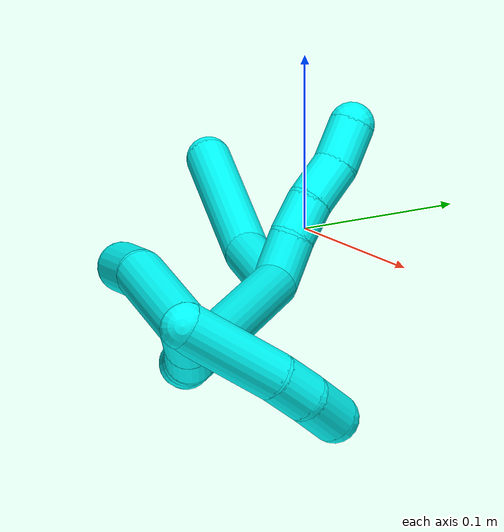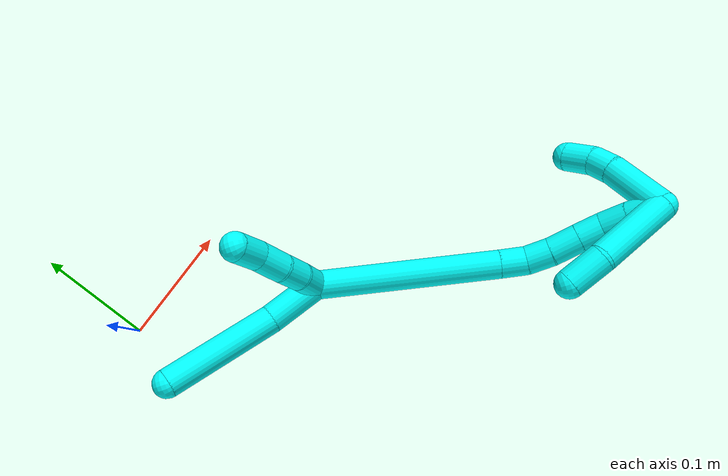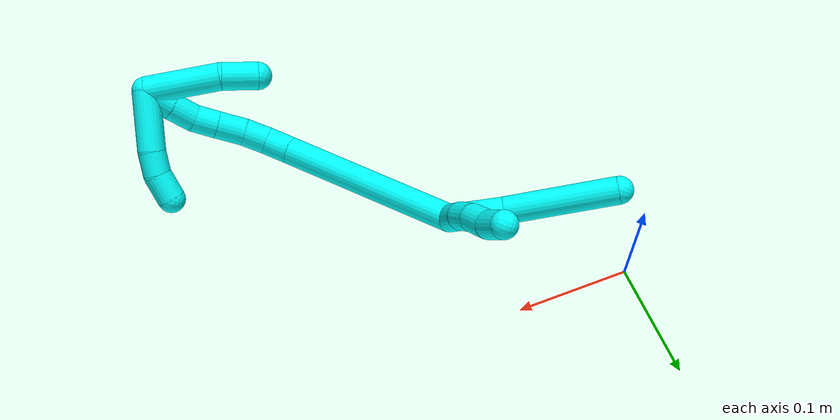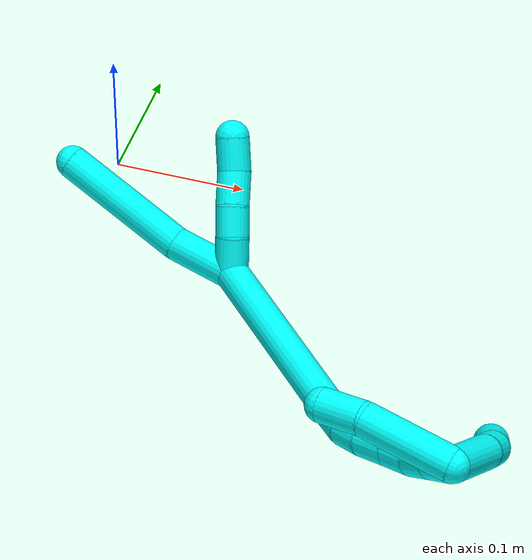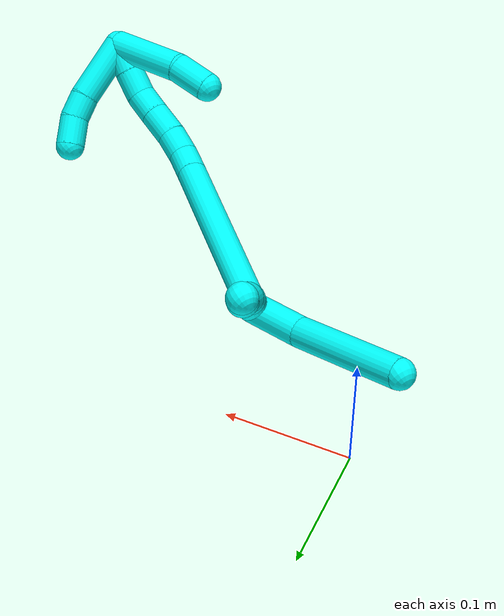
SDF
<sdf version="1.7">
 <world name="default">
  <model name="3">
   <static>0</static>
   <link name="3">
    <collision name="collision-cylinder-e_1_2_8">
     <pose>-0.010464 -0.004546 -0.021391 2.93221 -0.446299 -2.27431</pose>
     <geometry><cylinder><radius>0.0125</radius><length>0.048487</length></cylinder></geometry>
     <surface>
      <friction><ode><mu>1.16</mu><mu2>1.16</mu2><slip1>0</slip1><slip2>0</slip2></ode></friction>
      <contact><ode><kp>1e+06</kp><kd>1</kd><max_vel>0</max_vel><min_depth>0.001</min_depth></ode></contact>
     </surface>
    </collision>
    <visual name="visual-cylinder-e_1_2_8">
     <pose>-0.010464 -0.004546 -0.021391 2.93221 -0.446299 -2.27431</pose>
     <geometry><cylinder><radius>0.0125</radius><length>0.048487</length></cylinder></geometry>
     <material><ambient>0.003922 1 0.996078 1</ambient></material>
    </visual>
    <collision name="collision-cylinder-e_2_8_6">
     <pose>-0.049658 -0.011422 -0.084561 3.08586 -0.601669 -2.9624</pose>
     <geometry><cylinder><radius>0.0125</radius><length>0.101513</length></cylinder></geometry>
     <surface>
      <friction><ode><mu>1.16</mu><mu2>1.16</mu2><slip1>0</slip1><slip2>0</slip2></ode></friction>
      <contact><ode><kp>1e+06</kp><kd>1</kd><max_vel>0</max_vel><min_depth>0.001</min_depth></ode></contact>
     </surface>
    </collision>
    <visual name="visual-cylinder-e_2_8_6">
     <pose>-0.049658 -0.011422 -0.084561 3.08586 -0.601669 -2.9624</pose>
     <geometry><cylinder><radius>0.0125</radius><length>0.101513</length></cylinder></geometry>
     <material><ambient>0.003922 1 0.996078 1</ambient></material>
    </visual>
    <collision name="collision-cylinder-e_1_2_9">
     <pose>-0.009775 0.008976 -0.002224 -1.81365 -0.813149 1.00607</pose>
     <geometry><cylinder><radius>0.0125</radius><length>0.026912</length></cylinder></geometry>
     <surface>
      <friction><ode><mu>1.16</mu><mu2>1.16</mu2><slip1>0</slip1><slip2>0</slip2></ode></friction>
      <contact><ode><kp>1e+06</kp><kd>1</kd><max_vel>0</max_vel><min_depth>0.001</min_depth></ode></contact>
     </surface>
    </collision>
    <visual name="visual-cylinder-e_1_2_9">
     <pose>-0.009775 0.008976 -0.002224 -1.81365 -0.813149 1.00607</pose>
     <geometry><cylinder><radius>0.0125</radius><length>0.026912</length></cylinder></geometry>
     <material><ambient>0.003922 1 0.996078 1</ambient></material>
    </visual>
    <collision name="collision-cylinder-e_2_9_10">
     <pose>-0.026588 0.025735 -0.007956 -1.99435 -0.689382 1.01439</pose>
     <geometry><cylinder><radius>0.0125</radius><length>0.022128</length></cylinder></geometry>
     <surface>
      <friction><ode><mu>1.16</mu><mu2>1.16</mu2><slip1>0</slip1><slip2>0</slip2></ode></friction>
      <contact><ode><kp>1e+06</kp><kd>1</kd><max_vel>0</max_vel><min_depth>0.001</min_depth></ode></contact>
     </surface>
    </collision>
    <visual name="visual-cylinder-e_2_9_10">
     <pose>-0.026588 0.025735 -0.007956 -1.99435 -0.689382 1.01439</pose>
     <geometry><cylinder><radius>0.0125</radius><length>0.022128</length></cylinder></geometry>
     <material><ambient>0.003922 1 0.996078 1</ambient></material>
    </visual>
    <collision name="collision-cylinder-e_3_10_11">
     <pose>-0.040053 0.043359 -0.016704 -2.05998 -0.522979 0.838439</pose>
     <geometry><cylinder><radius>0.0125</radius><length>0.025738</length></cylinder></geometry>
     <surface>
      <friction><ode><mu>1.16</mu><mu2>1.16</mu2><slip1>0</slip1><slip2>0</slip2></ode></friction>
      <contact><ode><kp>1e+06</kp><kd>1</kd><max_vel>0</max_vel><min_depth>0.001</min_depth></ode></contact>
     </surface>
    </collision>
    <visual name="visual-cylinder-e_3_10_11">
     <pose>-0.040053 0.043359 -0.016704 -2.05998 -0.522979 0.838439</pose>
     <geometry><cylinder><radius>0.0125</radius><length>0.025738</length></cylinder></geometry>
     <material><ambient>0.003922 1 0.996078 1</ambient></material>
    </visual>
    <collision name="collision-cylinder-e_4_11_5">
     <pose>-0.055184 0.061429 -0.025888 -2.01788 -0.761722 1.133</pose>
     <geometry><cylinder><radius>0.0125</radius><length>0.025222</length></cylinder></geometry>
     <surface>
      <friction><ode><mu>1.16</mu><mu2>1.16</mu2><slip1>0</slip1><slip2>0</slip2></ode></friction>
      <contact><ode><kp>1e+06</kp><kd>1</kd><max_vel>0</max_vel><min_depth>0.001</min_depth></ode></contact>
     </surface>
    </collision>
    <visual name="visual-cylinder-e_4_11_5">
     <pose>-0.055184 0.061429 -0.025888 -2.01788 -0.761722 1.133</pose>
     <geometry><cylinder><radius>0.0125</radius><length>0.025222</length></cylinder></geometry>
     <material><ambient>0.003922 1 0.996078 1</ambient></material>
    </visual>
    <collision name="collision-cylinder-e_1_2_12">
     <pose>0.008962 -0.020865 0.076062 0.267734 0.113142 0.015253</pose>
     <geometry><cylinder><radius>0.0125</radius><length>0.158759</length></cylinder></geometry>
     <surface>
      <friction><ode><mu>1.16</mu><mu2>1.16</mu2><slip1>0</slip1><slip2>0</slip2></ode></friction>
      <contact><ode><kp>1e+06</kp><kd>1</kd><max_vel>0</max_vel><min_depth>0.001</min_depth></ode></contact>
     </surface>
    </collision>
    <visual name="visual-cylinder-e_1_2_12">
     <pose>0.008962 -0.020865 0.076062 0.267734 0.113142 0.015253</pose>
     <geometry><cylinder><radius>0.0125</radius><length>0.158759</length></cylinder></geometry>
     <material><ambient>0.003922 1 0.996078 1</ambient></material>
    </visual>
    <collision name="collision-cylinder-e_2_12_13">
     <pose>0.019054 -0.044492 0.163355 0.241056 0.097446 0.011811</pose>
     <geometry><cylinder><radius>0.0125</radius><length>0.023241</length></cylinder></geometry>
     <surface>
      <friction><ode><mu>1.16</mu><mu2>1.16</mu2><slip1>0</slip1><slip2>0</slip2></ode></friction>
      <contact><ode><kp>1e+06</kp><kd>1</kd><max_vel>0</max_vel><min_depth>0.001</min_depth></ode></contact>
     </surface>
    </collision>
    <visual name="visual-cylinder-e_2_12_13">
     <pose>0.019054 -0.044492 0.163355 0.241056 0.097446 0.011811</pose>
     <geometry><cylinder><radius>0.0125</radius><length>0.023241</length></cylinder></geometry>
     <material><ambient>0.003922 1 0.996078 1</ambient></material>
    </visual>
    <collision name="collision-cylinder-e_3_13_14">
     <pose>0.019509 -0.046825 0.185638 -0.038663 -0.061043 0.001181</pose>
     <geometry><cylinder><radius>0.0125</radius><length>0.022163</length></cylinder></geometry>
     <surface>
      <friction><ode><mu>1.16</mu><mu2>1.16</mu2><slip1>0</slip1><slip2>0</slip2></ode></friction>
      <contact><ode><kp>1e+06</kp><kd>1</kd><max_vel>0</max_vel><min_depth>0.001</min_depth></ode></contact>
     </surface>
    </collision>
    <visual name="visual-cylinder-e_3_13_14">
     <pose>0.019509 -0.046825 0.185638 -0.038663 -0.061043 0.001181</pose>
     <geometry><cylinder><radius>0.0125</radius><length>0.022163</length></cylinder></geometry>
     <material><ambient>0.003922 1 0.996078 1</ambient></material>
    </visual>
    <collision name="collision-cylinder-e_4_14_15">
     <pose>0.018574 -0.044477 0.209125 -0.153206 -0.020548 0.001577</pose>
     <geometry><cylinder><radius>0.0125</radius><length>0.025169</length></cylinder></geometry>
     <surface>
      <friction><ode><mu>1.16</mu><mu2>1.16</mu2><slip1>0</slip1><slip2>0</slip2></ode></friction>
      <contact><ode><kp>1e+06</kp><kd>1</kd><max_vel>0</max_vel><min_depth>0.001</min_depth></ode></contact>
     </surface>
    </collision>
    <visual name="visual-cylinder-e_4_14_15">
     <pose>0.018574 -0.044477 0.209125 -0.153206 -0.020548 0.001577</pose>
     <geometry><cylinder><radius>0.0125</radius><length>0.025169</length></cylinder></geometry>
     <material><ambient>0.003922 1 0.996078 1</ambient></material>
    </visual>
    <collision name="collision-cylinder-e_5_15_16">
     <pose>0.018045 -0.041108 0.232226 -0.135018 -0.025196 0.001704</pose>
     <geometry><cylinder><radius>0.0125</radius><length>0.021535</length></cylinder></geometry>
     <surface>
      <friction><ode><mu>1.16</mu><mu2>1.16</mu2><slip1>0</slip1><slip2>0</slip2></ode></friction>
      <contact><ode><kp>1e+06</kp><kd>1</kd><max_vel>0</max_vel><min_depth>0.001</min_depth></ode></contact>
     </surface>
    </collision>
    <visual name="visual-cylinder-e_5_15_16">
     <pose>0.018045 -0.041108 0.232226 -0.135018 -0.025196 0.001704</pose>
     <geometry><cylinder><radius>0.0125</radius><length>0.021535</length></cylinder></geometry>
     <material><ambient>0.003922 1 0.996078 1</ambient></material>
    </visual>
    <collision name="collision-cylinder-e_6_16_17">
     <pose>0.014293 -0.037809 0.253771 -0.168514 -0.305546 0.026007</pose>
     <geometry><cylinder><radius>0.0125</radius><length>0.023142</length></cylinder></geometry>
     <surface>
      <friction><ode><mu>1.16</mu><mu2>1.16</mu2><slip1>0</slip1><slip2>0</slip2></ode></friction>
      <contact><ode><kp>1e+06</kp><kd>1</kd><max_vel>0</max_vel><min_depth>0.001</min_depth></ode></contact>
     </surface>
    </collision>
    <visual name="visual-cylinder-e_6_16_17">
     <pose>0.014293 -0.037809 0.253771 -0.168514 -0.305546 0.026007</pose>
     <geometry><cylinder><radius>0.0125</radius><length>0.023142</length></cylinder></geometry>
     <material><ambient>0.003922 1 0.996078 1</ambient></material>
    </visual>
    <collision name="collision-cylinder-e_7_17_1">
     <pose>0.006194 -0.034511 0.276711 -0.119352 -0.363265 0.021945</pose>
     <geometry><cylinder><radius>0.0125</radius><length>0.025991</length></cylinder></geometry>
     <surface>
      <friction><ode><mu>1.16</mu><mu2>1.16</mu2><slip1>0</slip1><slip2>0</slip2></ode></friction>
      <contact><ode><kp>1e+06</kp><kd>1</kd><max_vel>0</max_vel><min_depth>0.001</min_depth></ode></contact>
     </surface>
    </collision>
    <visual name="visual-cylinder-e_7_17_1">
     <pose>0.006194 -0.034511 0.276711 -0.119352 -0.363265 0.021945</pose>
     <geometry><cylinder><radius>0.0125</radius><length>0.025991</length></cylinder></geometry>
     <material><ambient>0.003922 1 0.996078 1</ambient></material>
    </visual>
    <collision name="collision-cylinder-e_1_1_18">
     <pose>0.021205 -0.017983 0.277632 -2.20695 0.808279 -1.40616</pose>
     <geometry><cylinder><radius>0.0125</radius><length>0.054289</length></cylinder></geometry>
     <surface>
      <friction><ode><mu>1.16</mu><mu2>1.16</mu2><slip1>0</slip1><slip2>0</slip2></ode></friction>
      <contact><ode><kp>1e+06</kp><kd>1</kd><max_vel>0</max_vel><min_depth>0.001</min_depth></ode></contact>
     </surface>
    </collision>
    <visual name="visual-cylinder-e_1_1_18">
     <pose>0.021205 -0.017983 0.277632 -2.20695 0.808279 -1.40616</pose>
     <geometry><cylinder><radius>0.0125</radius><length>0.054289</length></cylinder></geometry>
     <material><ambient>0.003922 1 0.996078 1</ambient></material>
    </visual>
    <collision name="collision-cylinder-e_2_18_19">
     <pose>0.048367 0.001824 0.260999 -2.4314 0.804914 -1.70837</pose>
     <geometry><cylinder><radius>0.0125</radius><length>0.020907</length></cylinder></geometry>
     <surface>
      <friction><ode><mu>1.16</mu><mu2>1.16</mu2><slip1>0</slip1><slip2>0</slip2></ode></friction>
      <contact><ode><kp>1e+06</kp><kd>1</kd><max_vel>0</max_vel><min_depth>0.001</min_depth></ode></contact>
     </surface>
    </collision>
    <visual name="visual-cylinder-e_2_18_19">
     <pose>0.048367 0.001824 0.260999 -2.4314 0.804914 -1.70837</pose>
     <geometry><cylinder><radius>0.0125</radius><length>0.020907</length></cylinder></geometry>
     <material><ambient>0.003922 1 0.996078 1</ambient></material>
    </visual>
    <collision name="collision-cylinder-e_3_19_4">
     <pose>0.063202 0.010414 0.246254 -2.74567 0.629395 -2.03708</pose>
     <geometry><cylinder><radius>0.0125</radius><length>0.024804</length></cylinder></geometry>
     <surface>
      <friction><ode><mu>1.16</mu><mu2>1.16</mu2><slip1>0</slip1><slip2>0</slip2></ode></friction>
      <contact><ode><kp>1e+06</kp><kd>1</kd><max_vel>0</max_vel><min_depth>0.001</min_depth></ode></contact>
     </surface>
    </collision>
    <visual name="visual-cylinder-e_3_19_4">
     <pose>0.063202 0.010414 0.246254 -2.74567 0.629395 -2.03708</pose>
     <geometry><cylinder><radius>0.0125</radius><length>0.024804</length></cylinder></geometry>
     <material><ambient>0.003922 1 0.996078 1</ambient></material>
    </visual>
    <collision name="collision-cylinder-e_1_1_20">
     <pose>-0.014002 -0.040127 0.259577 2.90427 -0.47846 -2.23227</pose>
     <geometry><cylinder><radius>0.0125</radius><length>0.067672</length></cylinder></geometry>
     <surface>
      <friction><ode><mu>1.16</mu><mu2>1.16</mu2><slip1>0</slip1><slip2>0</slip2></ode></friction>
      <contact><ode><kp>1e+06</kp><kd>1</kd><max_vel>0</max_vel><min_depth>0.001</min_depth></ode></contact>
     </surface>
    </collision>
    <visual name="visual-cylinder-e_1_1_20">
     <pose>-0.014002 -0.040127 0.259577 2.90427 -0.47846 -2.23227</pose>
     <geometry><cylinder><radius>0.0125</radius><length>0.067672</length></cylinder></geometry>
     <material><ambient>0.003922 1 0.996078 1</ambient></material>
    </visual>
    <collision name="collision-cylinder-e_2_20_3">
     <pose>-0.033202 -0.051848 0.215335 2.84133 -0.225972 -1.28714</pose>
     <geometry><cylinder><radius>0.0125</radius><length>0.032328</length></cylinder></geometry>
     <surface>
      <friction><ode><mu>1.16</mu><mu2>1.16</mu2><slip1>0</slip1><slip2>0</slip2></ode></friction>
      <contact><ode><kp>1e+06</kp><kd>1</kd><max_vel>0</max_vel><min_depth>0.001</min_depth></ode></contact>
     </surface>
    </collision>
    <visual name="visual-cylinder-e_2_20_3">
     <pose>-0.033202 -0.051848 0.215335 2.84133 -0.225972 -1.28714</pose>
     <geometry><cylinder><radius>0.0125</radius><length>0.032328</length></cylinder></geometry>
     <material><ambient>0.003922 1 0.996078 1</ambient></material>
    </visual>
    <collision name="collision-sphere-3">
     <pose>-0.036824 -0.056507 0.200286 0 -0 0</pose>
     <geometry><sphere><radius>0.0125</radius></sphere></geometry>
     <surface>
      <friction><ode><mu>1.16</mu><mu2>1.16</mu2><slip1>0</slip1><slip2>0</slip2></ode></friction>
      <contact><ode><kp>1e+06</kp><kd>1</kd><max_vel>0</max_vel><min_depth>0.001</min_depth></ode></contact>
     </surface>
    </collision>
    <visual name="visual-sphere-3">
     <pose>-0.036824 -0.056507 0.200286 0 -0 0</pose>
     <geometry><sphere><radius>0.0125</radius></sphere></geometry>
     <material><ambient>0.003922 1 0.996078 1</ambient></material>
    </visual>
    <collision name="collision-sphere-20">
     <pose>-0.029581 -0.047188 0.230383 0 -0 0</pose>
     <geometry><sphere><radius>0.0125</radius></sphere></geometry>
     <surface>
      <friction><ode><mu>1.16</mu><mu2>1.16</mu2><slip1>0</slip1><slip2>0</slip2></ode></friction>
      <contact><ode><kp>1e+06</kp><kd>1</kd><max_vel>0</max_vel><min_depth>0.001</min_depth></ode></contact>
     </surface>
    </collision>
    <visual name="visual-sphere-20">
     <pose>-0.029581 -0.047188 0.230383 0 -0 0</pose>
     <geometry><sphere><radius>0.0125</radius></sphere></geometry>
     <material><ambient>0.003922 1 0.996078 1</ambient></material>
    </visual>
    <collision name="collision-sphere-4">
     <pose>0.070503 0.014281 0.237004 0 -0 0</pose>
     <geometry><sphere><radius>0.0125</radius></sphere></geometry>
     <surface>
      <friction><ode><mu>1.16</mu><mu2>1.16</mu2><slip1>0</slip1><slip2>0</slip2></ode></friction>
      <contact><ode><kp>1e+06</kp><kd>1</kd><max_vel>0</max_vel><min_depth>0.001</min_depth></ode></contact>
     </surface>
    </collision>
    <visual name="visual-sphere-4">
     <pose>0.070503 0.014281 0.237004 0 -0 0</pose>
     <geometry><sphere><radius>0.0125</radius></sphere></geometry>
     <material><ambient>0.003922 1 0.996078 1</ambient></material>
    </visual>
    <collision name="collision-sphere-11">
     <pose>-0.04648 0.0532 -0.021943 0 -0 0</pose>
     <geometry><sphere><radius>0.0125</radius></sphere></geometry>
     <surface>
      <friction><ode><mu>1.16</mu><mu2>1.16</mu2><slip1>0</slip1><slip2>0</slip2></ode></friction>
      <contact><ode><kp>1e+06</kp><kd>1</kd><max_vel>0</max_vel><min_depth>0.001</min_depth></ode></contact>
     </surface>
    </collision>
    <visual name="visual-sphere-11">
     <pose>-0.04648 0.0532 -0.021943 0 -0 0</pose>
     <geometry><sphere><radius>0.0125</radius></sphere></geometry>
     <material><ambient>0.003922 1 0.996078 1</ambient></material>
    </visual>
    <collision name="collision-sphere-10">
     <pose>-0.033625 0.033518 -0.011465 0 -0 0</pose>
     <geometry><sphere><radius>0.0125</radius></sphere></geometry>
     <surface>
      <friction><ode><mu>1.16</mu><mu2>1.16</mu2><slip1>0</slip1><slip2>0</slip2></ode></friction>
      <contact><ode><kp>1e+06</kp><kd>1</kd><max_vel>0</max_vel><min_depth>0.001</min_depth></ode></contact>
     </surface>
    </collision>
    <visual name="visual-sphere-10">
     <pose>-0.033625 0.033518 -0.011465 0 -0 0</pose>
     <geometry><sphere><radius>0.0125</radius></sphere></geometry>
     <material><ambient>0.003922 1 0.996078 1</ambient></material>
    </visual>
    <collision name="collision-sphere-6">
     <pose>-0.078387 -0.013753 -0.126339 0 -0 0</pose>
     <geometry><sphere><radius>0.0125</radius></sphere></geometry>
     <surface>
      <friction><ode><mu>1.16</mu><mu2>1.16</mu2><slip1>0</slip1><slip2>0</slip2></ode></friction>
      <contact><ode><kp>1e+06</kp><kd>1</kd><max_vel>0</max_vel><min_depth>0.001</min_depth></ode></contact>
     </surface>
    </collision>
    <visual name="visual-sphere-6">
     <pose>-0.078387 -0.013753 -0.126339 0 -0 0</pose>
     <geometry><sphere><radius>0.0125</radius></sphere></geometry>
     <material><ambient>0.003922 1 0.996078 1</ambient></material>
    </visual>
    <collision name="collision-sphere-9">
     <pose>-0.019551 0.017952 -0.004447 0 -0 0</pose>
     <geometry><sphere><radius>0.0125</radius></sphere></geometry>
     <surface>
      <friction><ode><mu>1.16</mu><mu2>1.16</mu2><slip1>0</slip1><slip2>0</slip2></ode></friction>
      <contact><ode><kp>1e+06</kp><kd>1</kd><max_vel>0</max_vel><min_depth>0.001</min_depth></ode></contact>
     </surface>
    </collision>
    <visual name="visual-sphere-9">
     <pose>-0.019551 0.017952 -0.004447 0 -0 0</pose>
     <geometry><sphere><radius>0.0125</radius></sphere></geometry>
     <material><ambient>0.003922 1 0.996078 1</ambient></material>
    </visual>
    <collision name="collision-sphere-2">
     <geometry><sphere><radius>0.0125</radius></sphere></geometry>
     <surface>
      <friction><ode><mu>1.16</mu><mu2>1.16</mu2><slip1>0</slip1><slip2>0</slip2></ode></friction>
      <contact><ode><kp>1e+06</kp><kd>1</kd><max_vel>0</max_vel><min_depth>0.001</min_depth></ode></contact>
     </surface>
    </collision>
    <visual name="visual-sphere-2">
     <geometry><sphere><radius>0.0125</radius></sphere></geometry>
     <material><ambient>0.003922 1 0.996078 1</ambient></material>
    </visual>
    <collision name="collision-sphere-19">
     <pose>0.055902 0.006548 0.255505 0 -0 0</pose>
     <geometry><sphere><radius>0.0125</radius></sphere></geometry>
     <surface>
      <friction><ode><mu>1.16</mu><mu2>1.16</mu2><slip1>0</slip1><slip2>0</slip2></ode></friction>
      <contact><ode><kp>1e+06</kp><kd>1</kd><max_vel>0</max_vel><min_depth>0.001</min_depth></ode></contact>
     </surface>
    </collision>
    <visual name="visual-sphere-19">
     <pose>0.055902 0.006548 0.255505 0 -0 0</pose>
     <geometry><sphere><radius>0.0125</radius></sphere></geometry>
     <material><ambient>0.003922 1 0.996078 1</ambient></material>
    </visual>
    <collision name="collision-sphere-8">
     <pose>-0.020929 -0.009091 -0.042783 0 -0 0</pose>
     <geometry><sphere><radius>0.0125</radius></sphere></geometry>
     <surface>
      <friction><ode><mu>1.16</mu><mu2>1.16</mu2><slip1>0</slip1><slip2>0</slip2></ode></friction>
      <contact><ode><kp>1e+06</kp><kd>1</kd><max_vel>0</max_vel><min_depth>0.001</min_depth></ode></contact>
     </surface>
    </collision>
    <visual name="visual-sphere-8">
     <pose>-0.020929 -0.009091 -0.042783 0 -0 0</pose>
     <geometry><sphere><radius>0.0125</radius></sphere></geometry>
     <material><ambient>0.003922 1 0.996078 1</ambient></material>
    </visual>
    <collision name="collision-sphere-5">
     <pose>-0.063888 0.069658 -0.029834 0 -0 0</pose>
     <geometry><sphere><radius>0.0125</radius></sphere></geometry>
     <surface>
      <friction><ode><mu>1.16</mu><mu2>1.16</mu2><slip1>0</slip1><slip2>0</slip2></ode></friction>
      <contact><ode><kp>1e+06</kp><kd>1</kd><max_vel>0</max_vel><min_depth>0.001</min_depth></ode></contact>
     </surface>
    </collision>
    <visual name="visual-sphere-5">
     <pose>-0.063888 0.069658 -0.029834 0 -0 0</pose>
     <geometry><sphere><radius>0.0125</radius></sphere></geometry>
     <material><ambient>0.003922 1 0.996078 1</ambient></material>
    </visual>
    <collision name="collision-sphere-12">
     <pose>0.017924 -0.041731 0.152124 0 -0 0</pose>
     <geometry><sphere><radius>0.0125</radius></sphere></geometry>
     <surface>
      <friction><ode><mu>1.16</mu><mu2>1.16</mu2><slip1>0</slip1><slip2>0</slip2></ode></friction>
      <contact><ode><kp>1e+06</kp><kd>1</kd><max_vel>0</max_vel><min_depth>0.001</min_depth></ode></contact>
     </surface>
    </collision>
    <visual name="visual-sphere-12">
     <pose>0.017924 -0.041731 0.152124 0 -0 0</pose>
     <geometry><sphere><radius>0.0125</radius></sphere></geometry>
     <material><ambient>0.003922 1 0.996078 1</ambient></material>
    </visual>
    <collision name="collision-sphere-13">
     <pose>0.020185 -0.047253 0.174585 0 -0 0</pose>
     <geometry><sphere><radius>0.0125</radius></sphere></geometry>
     <surface>
      <friction><ode><mu>1.16</mu><mu2>1.16</mu2><slip1>0</slip1><slip2>0</slip2></ode></friction>
      <contact><ode><kp>1e+06</kp><kd>1</kd><max_vel>0</max_vel><min_depth>0.001</min_depth></ode></contact>
     </surface>
    </collision>
    <visual name="visual-sphere-13">
     <pose>0.020185 -0.047253 0.174585 0 -0 0</pose>
     <geometry><sphere><radius>0.0125</radius></sphere></geometry>
     <material><ambient>0.003922 1 0.996078 1</ambient></material>
    </visual>
    <collision name="collision-sphere-14">
     <pose>0.018833 -0.046397 0.19669 0 -0 0</pose>
     <geometry><sphere><radius>0.0125</radius></sphere></geometry>
     <surface>
      <friction><ode><mu>1.16</mu><mu2>1.16</mu2><slip1>0</slip1><slip2>0</slip2></ode></friction>
      <contact><ode><kp>1e+06</kp><kd>1</kd><max_vel>0</max_vel><min_depth>0.001</min_depth></ode></contact>
     </surface>
    </collision>
    <visual name="visual-sphere-14">
     <pose>0.018833 -0.046397 0.19669 0 -0 0</pose>
     <geometry><sphere><radius>0.0125</radius></sphere></geometry>
     <material><ambient>0.003922 1 0.996078 1</ambient></material>
    </visual>
    <collision name="collision-sphere-15">
     <pose>0.018316 -0.042557 0.221559 0 -0 0</pose>
     <geometry><sphere><radius>0.0125</radius></sphere></geometry>
     <surface>
      <friction><ode><mu>1.16</mu><mu2>1.16</mu2><slip1>0</slip1><slip2>0</slip2></ode></friction>
      <contact><ode><kp>1e+06</kp><kd>1</kd><max_vel>0</max_vel><min_depth>0.001</min_depth></ode></contact>
     </surface>
    </collision>
    <visual name="visual-sphere-15">
     <pose>0.018316 -0.042557 0.221559 0 -0 0</pose>
     <geometry><sphere><radius>0.0125</radius></sphere></geometry>
     <material><ambient>0.003922 1 0.996078 1</ambient></material>
    </visual>
    <collision name="collision-sphere-16">
     <pose>0.017773 -0.039659 0.242892 0 -0 0</pose>
     <geometry><sphere><radius>0.0125</radius></sphere></geometry>
     <surface>
      <friction><ode><mu>1.16</mu><mu2>1.16</mu2><slip1>0</slip1><slip2>0</slip2></ode></friction>
      <contact><ode><kp>1e+06</kp><kd>1</kd><max_vel>0</max_vel><min_depth>0.001</min_depth></ode></contact>
     </surface>
    </collision>
    <visual name="visual-sphere-16">
     <pose>0.017773 -0.039659 0.242892 0 -0 0</pose>
     <geometry><sphere><radius>0.0125</radius></sphere></geometry>
     <material><ambient>0.003922 1 0.996078 1</ambient></material>
    </visual>
    <collision name="collision-sphere-17">
     <pose>0.010812 -0.035958 0.26465 0 -0 0</pose>
     <geometry><sphere><radius>0.0125</radius></sphere></geometry>
     <surface>
      <friction><ode><mu>1.16</mu><mu2>1.16</mu2><slip1>0</slip1><slip2>0</slip2></ode></friction>
      <contact><ode><kp>1e+06</kp><kd>1</kd><max_vel>0</max_vel><min_depth>0.001</min_depth></ode></contact>
     </surface>
    </collision>
    <visual name="visual-sphere-17">
     <pose>0.010812 -0.035958 0.26465 0 -0 0</pose>
     <geometry><sphere><radius>0.0125</radius></sphere></geometry>
     <material><ambient>0.003922 1 0.996078 1</ambient></material>
    </visual>
    <collision name="collision-sphere-1">
     <pose>0.001576 -0.033065 0.288772 0 -0 0</pose>
     <geometry><sphere><radius>0.0125</radius></sphere></geometry>
     <surface>
      <friction><ode><mu>1.16</mu><mu2>1.16</mu2><slip1>0</slip1><slip2>0</slip2></ode></friction>
      <contact><ode><kp>1e+06</kp><kd>1</kd><max_vel>0</max_vel><min_depth>0.001</min_depth></ode></contact>
     </surface>
    </collision>
    <visual name="visual-sphere-1">
     <pose>0.001576 -0.033065 0.288772 0 -0 0</pose>
     <geometry><sphere><radius>0.0125</radius></sphere></geometry>
     <material><ambient>0.003922 1 0.996078 1</ambient></material>
    </visual>
    <collision name="collision-sphere-18">
     <pose>0.040833 -0.002901 0.266493 0 -0 0</pose>
     <geometry><sphere><radius>0.0125</radius></sphere></geometry>
     <surface>
      <friction><ode><mu>1.16</mu><mu2>1.16</mu2><slip1>0</slip1><slip2>0</slip2></ode></friction>
      <contact><ode><kp>1e+06</kp><kd>1</kd><max_vel>0</max_vel><min_depth>0.001</min_depth></ode></contact>
     </surface>
    </collision>
    <visual name="visual-sphere-18">
     <pose>0.040833 -0.002901 0.266493 0 -0 0</pose>
     <geometry><sphere><radius>0.0125</radius></sphere></geometry>
     <material><ambient>0.003922 1 0.996078 1</ambient></material>
    </visual>
    <inertial>
     <pose>-0.004623 -0.016181 0.111387 0 -0 0</pose>
     <mass>0.75</mass>
     <inertia>
      <ixx>0.000203</ixx>
      <ixy>0</ixy>
      <ixz>0</ixz>
      <iyy>0.000425</iyy>
      <iyz>0</iyz>
      <izz>0.000111</izz>
     </inertia>
    </inertial>
   </link>
   <pose>0.123211 -0.099984 0.011485 0.981773 1.10409 0.414362</pose>
  </model>
 </world>
</sdf>
